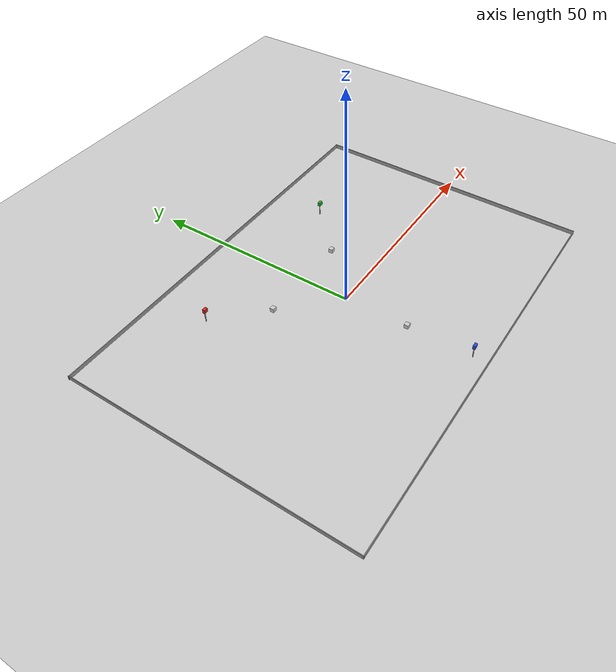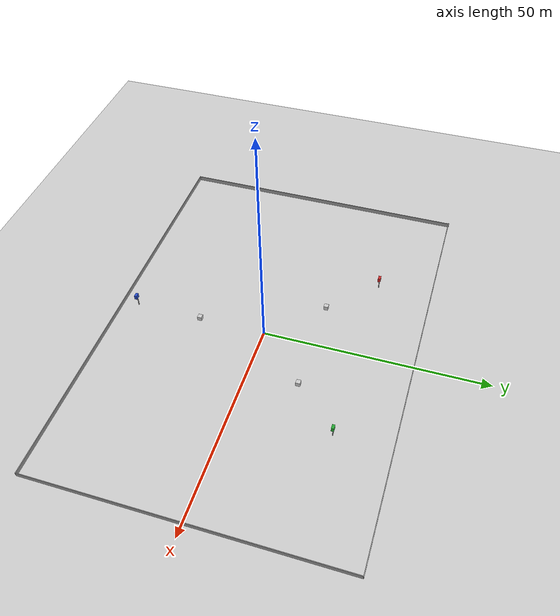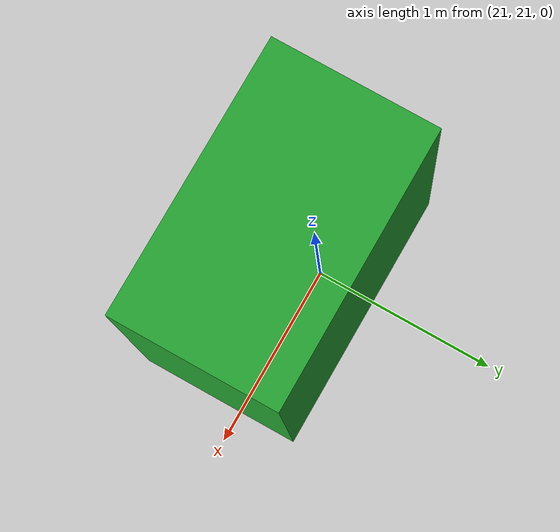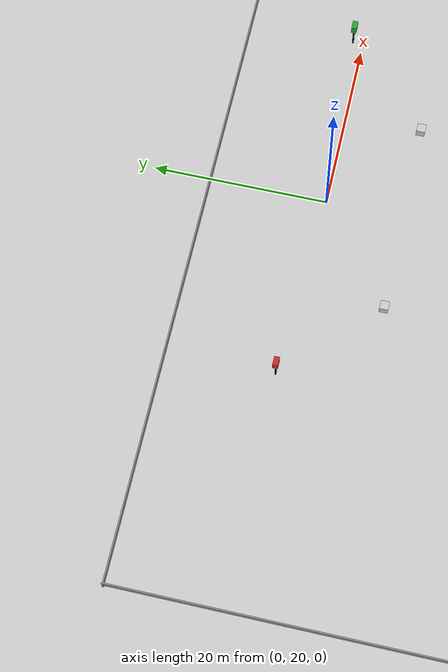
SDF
<?xml version="1.0" encoding="UTF-8"?>
<sdf version="1.4">
  <world name="default">
    <!-- *********************INITIAL POSE OF THE CAMERA***************************** -->
		<gui>
      <camera name="main_cam">
        <pose>3.516078 -55.086330 47.829880 0 0.8 1.57</pose>

      </camera>
    </gui>

    <!-- *********************GROUND AND SUN***************************** -->
    <include>
      <uri>model://ground_plane</uri>
    </include>

    <include>
      <uri>model://sun</uri>
    </include>

    <!-- *********************FLAGS***************************** -->
    <!-- 3 flags positionned at 30m (d) from the center of the environment. Their coordinates are determined easily: x = d*cos(angle), y = d*sin(angle) -->
    <include>
      <uri>model://red_flag</uri>
      <name>flag_1</name>
      <pose>-21.21320344 21.21320344 0 0 0 0</pose>
    </include>

    <include>
      <uri>model://green_flag</uri>
      <name>flag_2</name>
      <pose>21.21320344 21.21320344 0 0 0 0</pose>
    </include>

    <include>
      <uri>model://blue_flag</uri>
      <name>flag_3</name>
      <pose>0 -30 0 0 0 0</pose>
    </include>

    <!-- **********************DISTANCE TO FLAGS PLUGIN**************************** -->
    <plugin name="dtfPlugin" filename="libdistance_to_flag_plugin.so">
      <nbFlags>3</nbFlags>
    </plugin>

    <!-- **********************WALLS**************************** -->
    <include>
      <uri>model://walls_evry</uri>
      <name>limits</name>
      <pose>0 0 0 0 0 0</pose>
    </include>

    <!-- **********************Obstacles**************************** -->
    <include>
      <uri>model://basic_box</uri>
      <name>box1</name>
      <pose>-11.21320344 11.21320344 0 0 0 0</pose>
    </include>

    <include>
      <uri>model://basic_box</uri>
      <name>box2</name>
      <pose>11.21320344 11.21320344 0 0 0 0</pose>
    </include>

     <include>
      <uri>model://basic_box</uri>
      <name>box3</name>
      <pose>0 -15 0 0 0 0</pose>
    </include>

  </world>
</sdf>

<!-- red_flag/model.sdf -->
<sdf version="1.4">
  <model name="flag">
    <static>true</static>
    <link name="flag">
      <visual name="base">
        <pose>0 0 1.5 0 0 0</pose>
        <geometry>
          <cylinder>
            <radius>0.1</radius>
            <length>3</length>
          </cylinder>
        </geometry>

        <!-- BLACK -->
        <material>
          <ambient>0 0 0 1</ambient>
        </material>
      </visual>

      <visual name="top">
        <pose>0.25 0 3 0 0 0</pose>
        <geometry>
          <box>
            <size>1 0.6 1</size>
          </box>
        </geometry>

        <!-- RED -->
        <material>
          <script>
            <uri>file://media/materials/scripts/gazebo.material</uri>
            <name>Gazebo/Red</name>
          </script>
        </material>

      </visual>
    </link>
  </model>
</sdf>

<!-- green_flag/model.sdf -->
<sdf version="1.4">
  <model name="flag">
    <static>true</static>
    <link name="flag">
      <visual name="base">
        <pose>0 0 1.5 0 0 0</pose>
        <geometry>
          <cylinder>
            <radius>0.1</radius>
            <length>3</length>
          </cylinder>
        </geometry>

        <!-- BLACK -->
        <material>
          <ambient>0 0 0 1</ambient>
        </material>
      </visual>

      <visual name="top">
        <pose>0.25 0 3 0 0 0</pose>
        <geometry>
          <box>
            <size>1 0.6 1</size>
          </box>
        </geometry>

        <!-- GREEN -->
        <material>
          <script>
            <uri>file://media/materials/scripts/gazebo.material</uri>
            <name>Gazebo/Green</name>
          </script>
        </material>

      </visual>
    </link>
  </model>
</sdf>

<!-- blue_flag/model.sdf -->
<sdf version="1.4">
  <model name="flag">
    <static>true</static>
    <link name="flag">
      <visual name="base">
        <pose>0 0 1.5 0 0 0</pose>
        <geometry>
          <cylinder>
            <radius>0.1</radius>
            <length>3</length>
          </cylinder>
        </geometry>

        <!-- BLACK -->
        <material>
          <ambient>0 0 0 1</ambient>
        </material>
      </visual>

      <visual name="top">
        <pose>0.25 0 3 0 0 0</pose>
        <geometry>
          <box>
            <size>1 0.6 1</size>
          </box>
        </geometry>

        <!-- BLUE -->
        <material>
          <script>
            <uri>file://media/materials/scripts/gazebo.material</uri>
            <name>Gazebo/Blue</name>
          </script>
        </material>

      </visual>
    </link>
  </model>
</sdf>

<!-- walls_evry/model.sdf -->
<sdf version='1.6'>
  <model name='walls_evry'>
    <pose frame=''>0.580204 -5.79028 0 0 -0 0</pose>
    <link name='Wall_0'>
      <collision name='Wall_0_Collision'>
        <geometry>
          <box>
            <size>95 0.15 1</size>
          </box>
        </geometry>
        <pose frame=''>0 0 0.5 0 -0 0</pose>
      </collision>
      <visual name='Wall_0_Visual'>
        <pose frame=''>0 0 0.5 0 -0 0</pose>
        <geometry>
          <box>
            <size>95 0.15 1</size>
          </box>
        </geometry>
        <material>
          <script>
            <uri>file://media/materials/scripts/gazebo.material</uri>
            <name>Gazebo/Grey</name>
          </script>
          <ambient>1 1 1 1</ambient>
        </material>
        <meta>
          <layer>0</layer>
        </meta>
      </visual>
      <pose frame=''>-0.000204 33.4423 0 0 -0 0</pose>
    </link>
    <link name='Wall_1'>
      <collision name='Wall_1_Collision'>
        <geometry>
          <box>
            <size>67.1433 0.15 1</size>
          </box>
        </geometry>
        <pose frame=''>0 0 0.5 0 -0 0</pose>
      </collision>
      <visual name='Wall_1_Visual'>
        <pose frame=''>0 0 0.5 0 -0 0</pose>
        <geometry>
          <box>
            <size>67.1433 0.15 1</size>
          </box>
        </geometry>
        <material>
          <script>
            <uri>file://media/materials/scripts/gazebo.material</uri>
            <name>Gazebo/Grey</name>
          </script>
          <ambient>1 1 1 1</ambient>
        </material>
        <meta>
          <layer>0</layer>
        </meta>
      </visual>
      <pose frame=''>47.2433 -0.053719 0 0 -0 -1.57621</pose>
    </link>
    <link name='Wall_2'>
      <collision name='Wall_2_Collision'>
        <geometry>
          <box>
            <size>94.5 0.15 1</size>
          </box>
        </geometry>
        <pose frame=''>0 0 0.5 0 -0 0</pose>
      </collision>
      <visual name='Wall_2_Visual'>
        <pose frame=''>0 0 0.5 0 -0 0</pose>
        <geometry>
          <box>
            <size>94.5 0.15 1</size>
          </box>
        </geometry>
        <material>
          <script>
            <uri>file://media/materials/scripts/gazebo.material</uri>
            <name>Gazebo/Grey</name>
          </script>
          <ambient>1 1 1 1</ambient>
        </material>
        <meta>
          <layer>0</layer>
        </meta>
      </visual>
      <pose frame=''>-0.113204 -33.5497 0 0 -0 3.14159</pose>
    </link>
    <link name='Wall_3'>
      <collision name='Wall_3_Collision'>
        <geometry>
          <box>
            <size>67.25 0.15 1</size>
          </box>
        </geometry>
        <pose frame=''>0 0 0.5 0 -0 0</pose>
      </collision>
      <visual name='Wall_3_Visual'>
        <pose frame=''>0 0 0.5 0 -0 0</pose>
        <geometry>
          <box>
            <size>67.25 0.15 1</size>
          </box>
        </geometry>
        <material>
          <script>
            <uri>file://media/materials/scripts/gazebo.material</uri>
            <name>Gazebo/Grey</name>
          </script>
          <ambient>1 1 1 1</ambient>
        </material>
        <meta>
          <layer>0</layer>
        </meta>
      </visual>
      <pose frame=''>-47.2882 0.000281 0 0 -0 1.5708</pose>
    </link>
    <static>1</static>
  </model>
</sdf>

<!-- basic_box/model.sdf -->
<sdf version="1.7">
<model name="basic_box" canonical_link="node0_link">
  <link name="node0_link">
    <collision name="node0_collision">
      <pose relative_to="node0_link">0.00000 0.00000 0.00000 0.00000 0.00000 0.00000</pose>
      <geometry>
        <mesh>
          <uri>meshes/Body.dae</uri>
          <scale>1.00000 1.00000 1.00000</scale>
        </mesh>
      </geometry>
      <surface>
        <contact><ode>  <max_vel>0.001</max_vel><min_depth>0.01</min_depth><kd>1e15</kd>  </ode></contact>
      </surface>
    </collision>
    <inertial>
      <inertia>
        <ixx>10.00000</ixx>
        <ixy>0.00000</ixy>
        <ixz>0.00000</ixz>
        <iyy>10.00000</iyy>
        <iyz>0.00000</iyz>
        <izz>10.00000</izz>
      </inertia>
      <pose relative_to="node0_link">0.00000 0.00000 0.50000 0.00000 0.00000 0.00000</pose>
      <mass>60.00000</mass>
    </inertial>
    <visual name="node0">
      <material>
        <diffuse>0.80000 0.80000 0.80000 1.00000</diffuse>
        <specular>0.40000 0.40000 0.40000 0.49804</specular>
        <emissive>0.00000 0.00000 0.00000 1.00000</emissive>
      </material>
      <pose relative_to="node0_link">0.00000 0.00000 0.00000 0.00000 0.00000 0.00000</pose>
      <geometry>
        <mesh>
          <uri>meshes/Body.dae</uri>
          <scale>1.00000 1.00000 1.00000</scale>
        </mesh>
      </geometry>
    </visual>
  </link>
</model>
</sdf>
